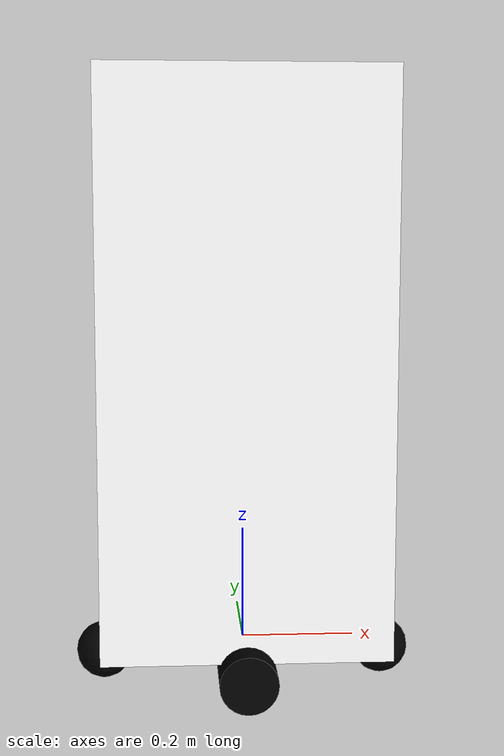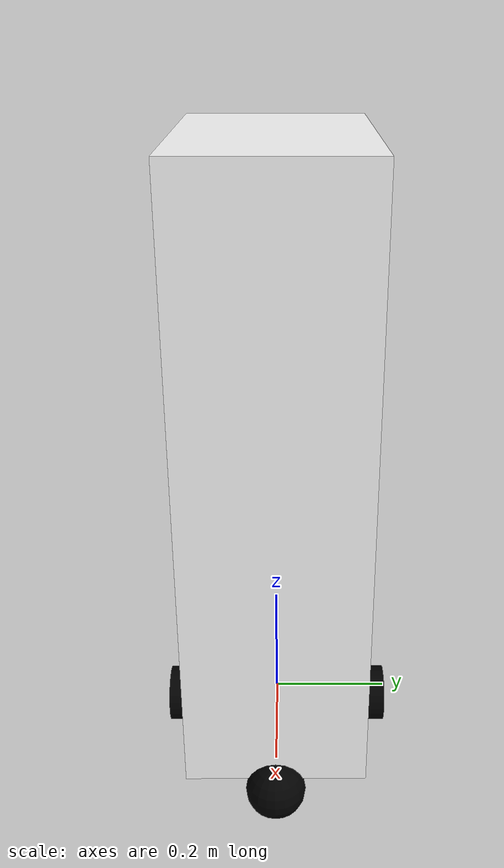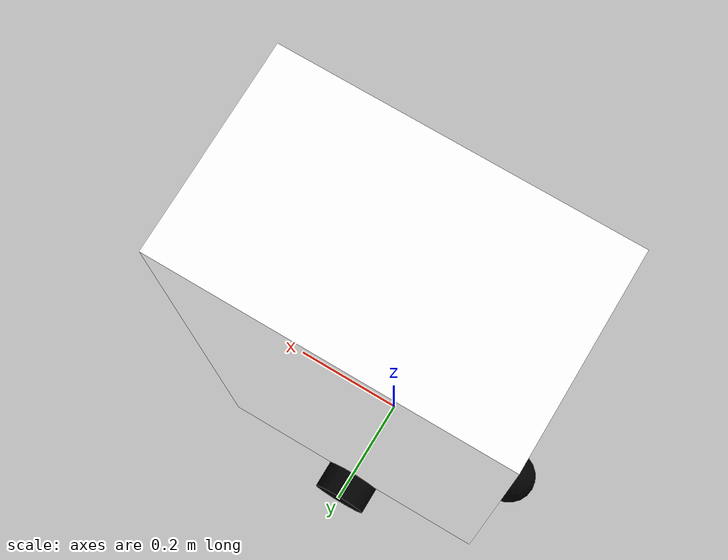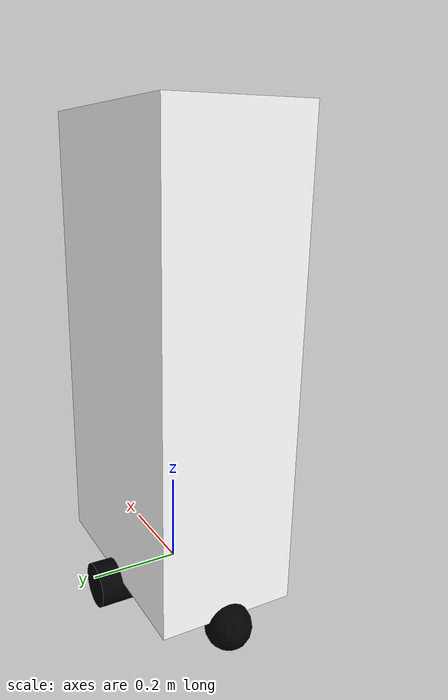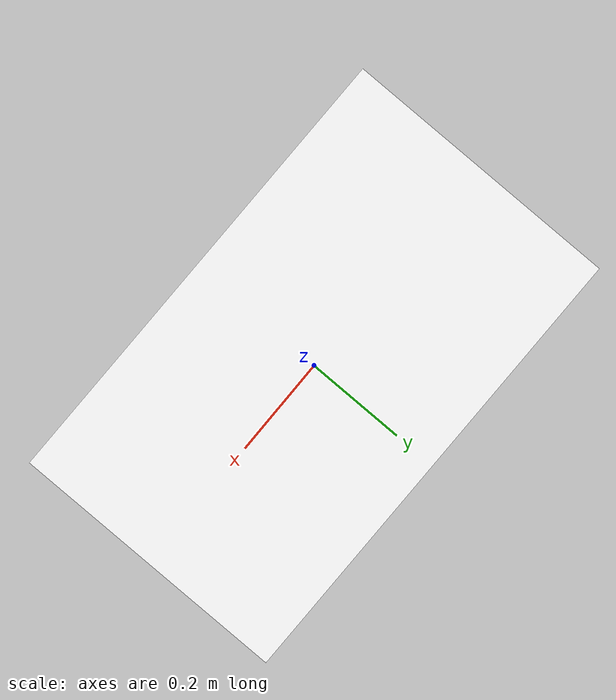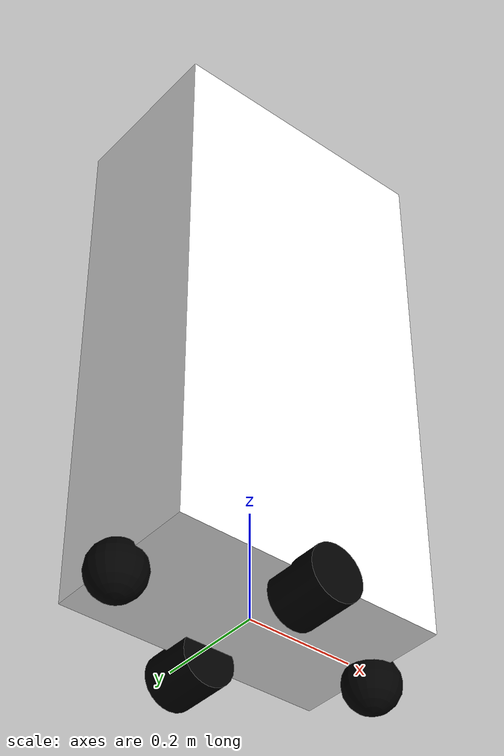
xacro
<?xml version="1.0"?>
<robot name="diff_drive_robot" xmlns:xacro="http://www.ros.org/wiki/xacro">

  <!-- Add namespace argument -->
  <xacro:arg name="namespace" default="my_robot"/>

  <!-- Use the namespace argument -->
  <xacro:property name="robot_name" value="$(arg namespace)"/>

  <!-- Modified dimensions -->
  <xacro:property name="base_width" value="0.5"/>
  <xacro:property name="base_depth" value="0.3"/>
  <xacro:property name="base_height" value="1.0"/>  <!-- Changed to 1m height -->
  <xacro:property name="wheel_radius" value="0.05"/>
  <xacro:property name="wheel_length" value="0.1"/>
  <xacro:property name="castor_radius" value="0.05"/>

    <!-- Adding an offset to raise the base -->
  <xacro:property name="ground_clearance" value="0.02"/>  <!-- 2cm clearance -->

  <!-- Base Link - Same as before with origin -->
  <link name="${robot_name}/base_link">
    <visual>
      <origin xyz="0 0 ${base_height/2}"/>
      <geometry>
        <box size="${base_width} ${base_depth} ${base_height}"/>
      </geometry>
      <material name="white">
        <color rgba="1 1 1 1"/>
      </material>
    </visual>
    <collision>
      <origin xyz="0 0 ${base_height/2}"/>
      <geometry>
        <box size="${base_width} ${base_depth} ${base_height}"/>
      </geometry>
    </collision>
    <inertial>
      <origin xyz="0 0 ${base_height/2}"/>
      <mass value="5"/>
      <inertia ixx="0.8" ixy="0" ixz="0" iyy="0.8" iyz="0" izz="0.1"/>
    </inertial>
  </link>

  <!-- Left Wheel -->
  <link name="${robot_name}/left_wheel">
    <visual>
      <origin xyz="0 0 0" rpy="1.5708 0 0"/>
      <geometry>
        <cylinder radius="${wheel_radius}" length="${wheel_length}"/>
      </geometry>
      <material name="black">
        <color rgba="0 0 0 1"/>
      </material>
    </visual>
    <collision>
      <origin xyz="0 0 0" rpy="1.5708 0 0"/>
      <geometry>
        <cylinder radius="${wheel_radius}" length="${wheel_length}"/>
      </geometry>
    </collision>
    <inertial>
      <mass value="0.5"/>
      <inertia ixx="0.01" ixy="0" ixz="0" iyy="0.01" iyz="0" izz="0.01"/>
    </inertial>
  </link>

  <!-- Right Wheel -->
  <link name="${robot_name}/right_wheel">
    <visual>
      <origin xyz="0 0 0" rpy="1.5708 0 0"/>
      <geometry>
        <cylinder radius="${wheel_radius}" length="${wheel_length}"/>
      </geometry>
      <material name="black">
        <color rgba="0 0 0 1"/>
      </material>
    </visual>
    <collision>
      <origin xyz="0 0 0" rpy="1.5708 0 0"/>
      <geometry>
        <cylinder radius="${wheel_radius}" length="${wheel_length}"/>
      </geometry>
    </collision>
    <inertial>
      <mass value="0.5"/>
      <inertia ixx="0.01" ixy="0" ixz="0" iyy="0.01" iyz="0" izz="0.01"/>
    </inertial>
  </link>

  <!-- Front Castor -->
  <link name="${robot_name}/front_castor">
    <visual>
      <geometry>
        <sphere radius="${castor_radius}"/>
      </geometry>
      <material name="black">
        <color rgba="0 0 0 1"/>
      </material>
    </visual>
    <collision>
      <geometry>
        <sphere radius="${castor_radius}"/>
      </geometry>
    </collision>
    <inertial>
      <mass value="0.1"/>
      <inertia ixx="0.001" ixy="0" ixz="0" iyy="0.001" iyz="0" izz="0.001"/>
    </inertial>
  </link>

  <!-- Rear Castor -->
  <link name="${robot_name}/rear_castor">
    <visual>
      <geometry>
        <sphere radius="${castor_radius}"/>
      </geometry>
      <material name="black">
        <color rgba="0 0 0 1"/>
      </material>
    </visual>
    <collision>
      <geometry>
        <sphere radius="${castor_radius}"/>
      </geometry>
    </collision>
    <inertial>
      <mass value="0.1"/>
      <inertia ixx="0.001" ixy="0" ixz="0" iyy="0.001" iyz="0" izz="0.001"/>
    </inertial>
  </link>

<!-- Modified wheel joints to sit below base -->
  <joint name="${robot_name}/left_wheel_joint" type="continuous">
    <parent link="${robot_name}/base_link"/>
    <child link="${robot_name}/left_wheel"/>
    <axis xyz="0 1 0"/>
    <origin xyz="0 ${base_depth/2} -${ground_clearance}"/>  <!-- Lowered by clearance amount -->
  </joint>

  <joint name="${robot_name}/right_wheel_joint" type="continuous">
    <parent link="${robot_name}/base_link"/>
    <child link="${robot_name}/right_wheel"/>
    <axis xyz="0 1 0"/>
    <origin xyz="0 -${base_depth/2} -${ground_clearance}"/>  <!-- Lowered by clearance amount -->
  </joint>

  <!-- Modified castor joints to sit slightly below base -->
  <joint name="${robot_name}/front_castor_joint" type="fixed">
    <parent link="${robot_name}/base_link"/>
    <child link="${robot_name}/front_castor"/>
    <origin xyz="0.25 0 -${ground_clearance}"/>  <!-- Lowered by clearance amount -->
  </joint>

  <joint name="${robot_name}/rear_castor_joint" type="fixed">
    <parent link="${robot_name}/base_link"/>
    <child link="${robot_name}/rear_castor"/>
    <origin xyz="-0.25 0 -${ground_clearance}"/>  <!-- Lowered by clearance amount -->
  </joint>

  <!-- Gazebo-specific elements -->
  <gazebo reference="${robot_name}/base_link">
    <material>Gazebo/White</material>
  </gazebo>

  <gazebo reference="${robot_name}/left_wheel">
    <material>Gazebo/Black</material>
  </gazebo>

  <gazebo reference="${robot_name}/right_wheel">
    <material>Gazebo/Black</material>
  </gazebo>

  <gazebo reference="${robot_name}/front_castor">
    <material>Gazebo/Black</material>
  </gazebo>

  <gazebo reference="${robot_name}/rear_castor">
    <material>Gazebo/Black</material>
  </gazebo>

    <!-- ROS 2 Control plugin -->
  <gazebo>
    <plugin filename="libgazebo_ros2_control.so" name="gazebo_ros2_control">
      <parameters>$(find my_robot_description)/config/diff_drive_controllers.yaml</parameters>
      <robotSimType>gazebo_ros2_control/GazeboSystem</robotSimType>
    </plugin>
  </gazebo>

  <!-- Transmission elements for ROS 2 Control -->
  <transmission name="${robot_name}_left_wheel_trans">
    <type>transmission_interface/SimpleTransmission</type>
    <joint name="${robot_name}/left_wheel_joint">
      <hardwareInterface>hardware_interface/VelocityJointInterface</hardwareInterface>
    </joint>
    <actuator name="${robot_name}_left_wheel_motor">
      <mechanicalReduction>1</mechanicalReduction>
    </actuator>
  </transmission>

  <transmission name="${robot_name}_right_wheel_trans">
    <type>transmission_interface/SimpleTransmission</type>
    <joint name="${robot_name}/right_wheel_joint">
      <hardwareInterface>hardware_interface/VelocityJointInterface</hardwareInterface>
    </joint>
    <actuator name="${robot_name}_right_wheel_motor">
      <mechanicalReduction>1</mechanicalReduction>
    </actuator>
  </transmission>

  <!-- ROS 2 Control tags -->
  <ros2_control name="${robot_name}" type="system">
    <hardware>
      <plugin>gazebo_ros2_control/GazeboSystem</plugin>
    </hardware>

    <joint name="${robot_name}/left_wheel_joint">
      <command_interface name="velocity">
        <param name="min">-10</param>
        <param name="max">10</param>
      </command_interface>
      <state_interface name="position"/>
      <state_interface name="velocity"/>
    </joint>

    <joint name="${robot_name}/right_wheel_joint">
      <command_interface name="velocity">
        <param name="min">-10</param>
        <param name="max">10</param>
      </command_interface>
      <state_interface name="position"/>
      <state_interface name="velocity"/>
    </joint>
  </ros2_control>
</robot>
